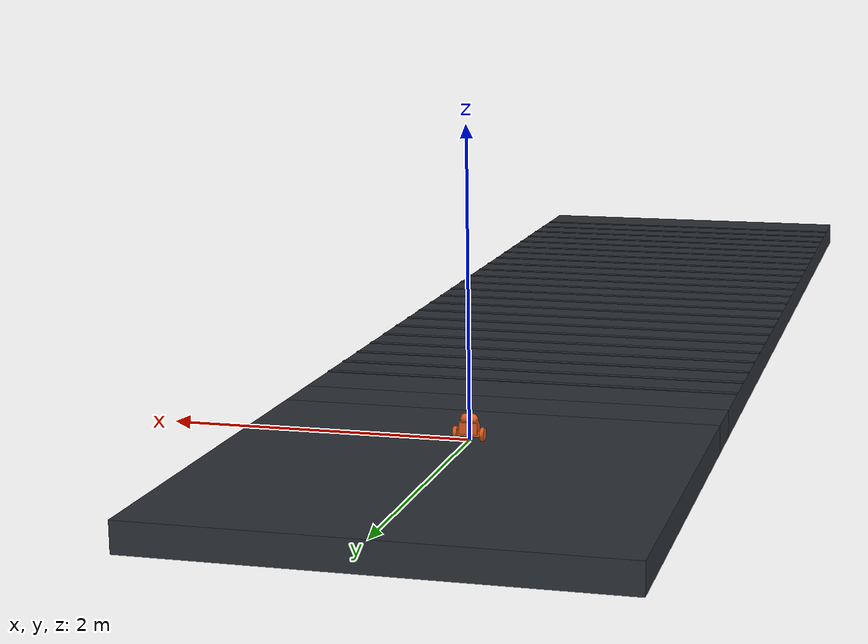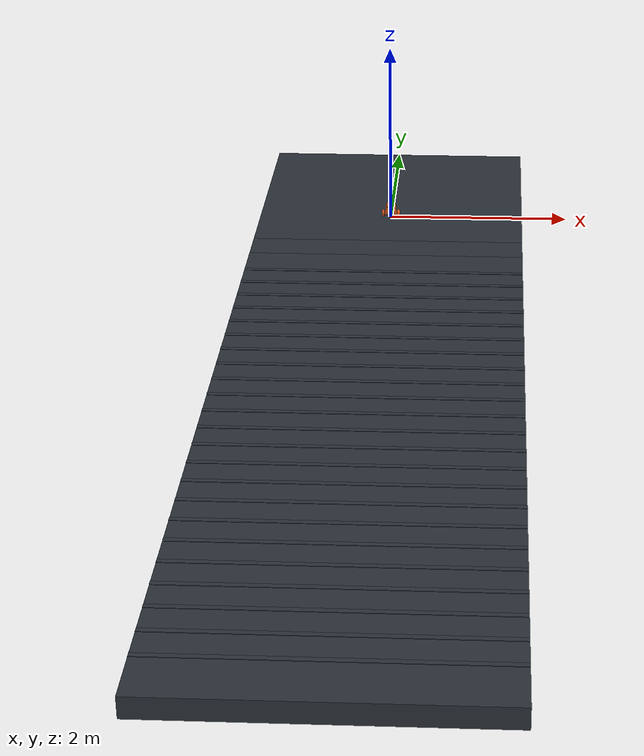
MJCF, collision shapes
<mujoco model="MiniSegway physics plant">
  <compiler angle="radian" meshdir="../../../assets/upstream_local" />
  <option timestep="0.001" integrator="implicitfast" gravity="0 0 -9.81" />
  <statistic center="0 0 0.05" extent="0.28" />
  <default>
    <default class="visual">
      <geom contype="0" conaffinity="0" group="2" />
    </default>
    <default class="collision">
      <geom group="3" rgba="0.85 0.35 0.12 0.25" solref="0.005 1" solimp="0.9 0.95 0.001" />
    </default>
  </default>
  <asset>
    <texture name="ground_tex" type="2d" builtin="checker" rgb1="0.22 0.25 0.28" rgb2="0.12 0.14 0.16" width="256" height="256" />
    <material name="ground_mat" texture="ground_tex" texrepeat="4 4" reflectance="0.15" />
    <mesh name="main_frame_mesh" file="main_frame.stl" scale="0.001 0.001 0.001" />
    <mesh name="wheel_base_mesh" file="wheel_base.stl" scale="0.001 0.001 0.001" />
    <mesh name="cover_mesh" file="cover.stl" scale="0.001 0.001 0.001" />
    <mesh name="motor_left_mesh" file="motor_left.stl" scale="0.001 0.001 0.001" />
    <mesh name="motor_right_mesh" file="motor_right.stl" scale="0.001 0.001 0.001" />
    <mesh name="mc33926_mesh" file="mc33926.stl" scale="0.001 0.001 0.001" />
    <mesh name="wheel_mesh" file="wheel.stl" scale="0.001 0.001 0.001" />
    <mesh name="adapter_left_mesh" file="adapter_left.stl" scale="0.001 0.001 0.001" />
    <mesh name="adapter_right_mesh" file="adapter_right.stl" scale="0.001 0.001 0.001" />
  </asset>
  <worldbody>
    <light pos="0 -0.5 0.8" dir="0 0.6 -1" diffuse="0.8 0.8 0.8" />
    <geom name="terrain_flat" type="box" pos="0 0.65 -0.1" size="1.5 1.35 0.1" material="ground_mat" friction="1 0.005 0.0001" condim="3" />
    <geom name="terrain_transition" type="box" pos="0 -0.9 -0.1" euler="-0 0 0" size="1.5 0.2 0.1" material="ground_mat" friction="1 0.005 0.0001" condim="3" />
    <geom name="terrain_constant_grade" type="box" pos="0 -5.1 -0.1" euler="-0 0 0" size="1.5 4 0.1" material="ground_mat" friction="1 0.005 0.0001" condim="3" />
    <geom name="terrain_rough_00" type="box" pos="0 -1.55 0.0025" euler="-0 0 0" size="1.5 0.025 0.0025" material="ground_mat" friction="1 0.005 0.0001" condim="3" />
    <geom name="terrain_rough_01" type="box" pos="0 -1.87 0.0025" euler="-0 0 0" size="1.5 0.025 0.0025" material="ground_mat" friction="1 0.005 0.0001" condim="3" />
    <geom name="terrain_rough_02" type="box" pos="0 -2.19 0.0025" euler="-0 0 0" size="1.5 0.025 0.0025" material="ground_mat" friction="1 0.005 0.0001" condim="3" />
    <geom name="terrain_rough_03" type="box" pos="0 -2.51 0.0025" euler="-0 0 0" size="1.5 0.025 0.0025" material="ground_mat" friction="1 0.005 0.0001" condim="3" />
    <geom name="terrain_rough_04" type="box" pos="0 -2.83 0.0025" euler="-0 0 0" size="1.5 0.025 0.0025" material="ground_mat" friction="1 0.005 0.0001" condim="3" />
    <geom name="terrain_rough_05" type="box" pos="0 -3.15 0.0025" euler="-0 0 0" size="1.5 0.025 0.0025" material="ground_mat" friction="1 0.005 0.0001" condim="3" />
    <geom name="terrain_rough_06" type="box" pos="0 -3.47 0.0025" euler="-0 0 0" size="1.5 0.025 0.0025" material="ground_mat" friction="1 0.005 0.0001" condim="3" />
    <geom name="terrain_rough_07" type="box" pos="0 -3.79 0.0025" euler="-0 0 0" size="1.5 0.025 0.0025" material="ground_mat" friction="1 0.005 0.0001" condim="3" />
    <geom name="terrain_rough_08" type="box" pos="0 -4.11 0.0025" euler="-0 0 0" size="1.5 0.025 0.0025" material="ground_mat" friction="1 0.005 0.0001" condim="3" />
    <geom name="terrain_rough_09" type="box" pos="0 -4.43 0.0025" euler="-0 0 0" size="1.5 0.025 0.0025" material="ground_mat" friction="1 0.005 0.0001" condim="3" />
    <geom name="terrain_rough_10" type="box" pos="0 -4.75 0.0025" euler="-0 0 0" size="1.5 0.025 0.0025" material="ground_mat" friction="1 0.005 0.0001" condim="3" />
    <geom name="terrain_rough_11" type="box" pos="0 -5.07 0.0025" euler="-0 0 0" size="1.5 0.025 0.0025" material="ground_mat" friction="1 0.005 0.0001" condim="3" />
    <geom name="terrain_rough_12" type="box" pos="0 -5.39 0.0025" euler="-0 0 0" size="1.5 0.025 0.0025" material="ground_mat" friction="1 0.005 0.0001" condim="3" />
    <geom name="terrain_rough_13" type="box" pos="0 -5.71 0.0025" euler="-0 0 0" size="1.5 0.025 0.0025" material="ground_mat" friction="1 0.005 0.0001" condim="3" />
    <geom name="terrain_rough_14" type="box" pos="0 -6.03 0.0025" euler="-0 0 0" size="1.5 0.025 0.0025" material="ground_mat" friction="1 0.005 0.0001" condim="3" />
    <geom name="terrain_rough_15" type="box" pos="0 -6.35 0.0025" euler="-0 0 0" size="1.5 0.025 0.0025" material="ground_mat" friction="1 0.005 0.0001" condim="3" />
    <geom name="terrain_rough_16" type="box" pos="0 -6.67 0.0025" euler="-0 0 0" size="1.5 0.025 0.0025" material="ground_mat" friction="1 0.005 0.0001" condim="3" />
    <geom name="terrain_rough_17" type="box" pos="0 -6.99 0.0025" euler="-0 0 0" size="1.5 0.025 0.0025" material="ground_mat" friction="1 0.005 0.0001" condim="3" />
    <geom name="terrain_rough_18" type="box" pos="0 -7.31 0.0025" euler="-0 0 0" size="1.5 0.025 0.0025" material="ground_mat" friction="1 0.005 0.0001" condim="3" />
    <geom name="terrain_rough_19" type="box" pos="0 -7.63 0.0025" euler="-0 0 0" size="1.5 0.025 0.0025" material="ground_mat" friction="1 0.005 0.0001" condim="3" />
    <geom name="terrain_rough_20" type="box" pos="0 -7.95 0.0025" euler="-0 0 0" size="1.5 0.025 0.0025" material="ground_mat" friction="1 0.005 0.0001" condim="3" />
    <geom name="terrain_rough_21" type="box" pos="0 -8.27 0.0025" euler="-0 0 0" size="1.5 0.025 0.0025" material="ground_mat" friction="1 0.005 0.0001" condim="3" />
    <geom name="terrain_rough_22" type="box" pos="0 -8.59 0.0025" euler="-0 0 0" size="1.5 0.025 0.0025" material="ground_mat" friction="1 0.005 0.0001" condim="3" />
    <body name="chassis" pos="0 0 0.043">
      <freejoint name="root" />
      <inertial pos="0.0001592717873 -0.001394466535 0.03368627387" mass="0.8173706489" fullinertia="0.0009508052638 0.001636345835 0.0009938057434 -1.163464906e-07 -4.840496598e-06 3.454944565e-05" />
      <geom name="main_frame_visual" class="visual" type="mesh" mesh="main_frame_mesh" rgba="0.12 0.42 0.72 1" />
      <geom name="wheel_base_visual" class="visual" type="mesh" mesh="wheel_base_mesh" rgba="0.95 0.50 0.10 1" />
      <geom name="cover_visual" class="visual" type="mesh" mesh="cover_mesh" rgba="0.18 0.72 0.32 0.72" />
      <geom name="motor_left_visual" class="visual" type="mesh" mesh="motor_left_mesh" rgba="0.45 0.47 0.50 1" />
      <geom name="motor_right_visual" class="visual" type="mesh" mesh="motor_right_mesh" rgba="0.45 0.47 0.50 1" />
      <geom name="mc33926_visual" class="visual" type="mesh" mesh="mc33926_mesh" rgba="0.08 0.36 0.18 1" />
      <geom name="battery_1_visual" class="visual" type="box" pos="0 -0.012 0.038" size="0.035 0.007 0.025" rgba="0.15 0.25 0.75 1" />
      <geom name="battery_2_visual" class="visual" type="box" pos="0 0.012 0.038" size="0.035 0.007 0.025" rgba="0.15 0.25 0.75 1" />
      <geom name="electronics_lump_visual" class="visual" type="box" pos="0 -0.024 0.067" size="0.035 0.006 0.0425" rgba="0.10 0.42 0.20 0.65" />
      <geom name="wheel_base_collision" class="collision" type="box" pos="0 0.0005 0.0042" size="0.074 0.0201 0.0198" />
      <geom name="lower_chassis_collision" class="collision" type="box" pos="0.001 -0.0015 0.038" size="0.0595 0.0325 0.038" />
      <geom name="upper_chassis_collision" class="collision" type="capsule" fromto="-0.024 -0.0015 0.096 0.026 -0.0015 0.096" size="0.033" />
      <site name="imu_site" type="box" pos="0 0 0.020" quat="1 0 0 0" size="0.004 0.003 0.001" rgba="1 0.15 0.05 1" />
      <body name="left_wheel" pos="-0.0885 0 0">
        <joint name="left_wheel_hinge" type="hinge" axis="1 0 0" damping="0.002" frictionloss="0.002" />
        <inertial pos="0.001407549168 -2.310217342e-08 4.024972882e-05" mass="0.1051" fullinertia="8.559060347e-05 4.760138372e-05 4.763051958e-05 2.677568832e-11 -3.525425309e-08 -1.463149106e-11" />
        <geom name="left_wheel_visual" class="visual" type="mesh" mesh="wheel_mesh" rgba="0.04 0.05 0.06 1" />
        <geom name="left_adapter_visual" class="visual" type="mesh" mesh="adapter_left_mesh" rgba="0.12 0.48 0.82 1" />
        <geom name="left_wheel_collision" class="collision" type="cylinder" size="0.042 0.012" quat="0.7071067812 0 0.7071067812 0" friction="1 0.005 0.0001" />
      </body>
      <body name="right_wheel" pos="0.0885 0 0">
        <joint name="right_wheel_hinge" type="hinge" axis="1 0 0" damping="0.002" frictionloss="0.002" />
        <inertial pos="-0.001407437868 -2.310217342e-08 -4.019113045e-05" mass="0.1051" fullinertia="8.559060397e-05 4.760141714e-05 4.763055251e-05 -2.601653908e-11 -3.526339188e-08 1.57007511e-11" />
        <geom name="right_wheel_visual" class="visual" type="mesh" mesh="wheel_mesh" rgba="0.04 0.05 0.06 1" />
        <geom name="right_adapter_visual" class="visual" type="mesh" mesh="adapter_right_mesh" rgba="0.12 0.48 0.82 1" />
        <geom name="right_wheel_collision" class="collision" type="cylinder" size="0.042 0.012" quat="0.7071067812 0 0.7071067812 0" friction="1 0.005 0.0001" />
      </body>
    </body>
  </worldbody>
  <actuator>
    <motor name="left_wheel_torque" joint="left_wheel_hinge" gear="1" ctrllimited="true" ctrlrange="-0.63 0.63" forcelimited="true" forcerange="-0.63 0.63" />
    <motor name="right_wheel_torque" joint="right_wheel_hinge" gear="1" ctrllimited="true" ctrlrange="-0.63 0.63" forcelimited="true" forcerange="-0.63 0.63" />
  </actuator>
  <sensor>
    <accelerometer name="imu_accelerometer" site="imu_site" />
    <gyro name="imu_gyro" site="imu_site" />
    <jointpos name="left_wheel_angle" joint="left_wheel_hinge" />
    <jointpos name="right_wheel_angle" joint="right_wheel_hinge" />
  </sensor>
  <keyframe>
    <key name="upright" qpos="0 0 0.043 1 0 0 0 0 0" />
  </keyframe>
</mujoco>
